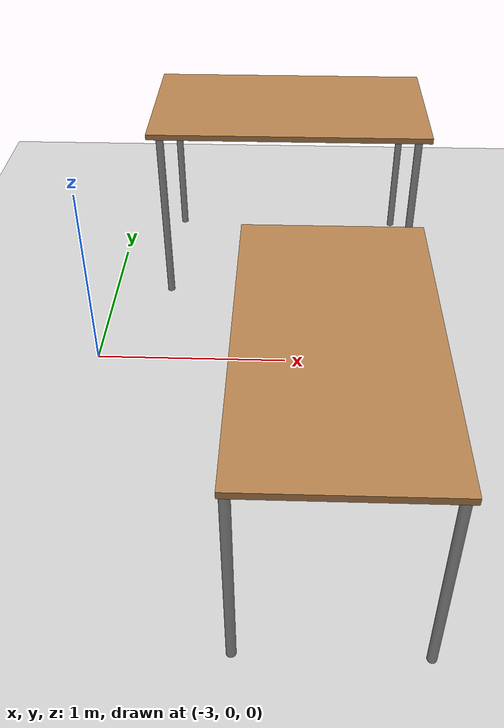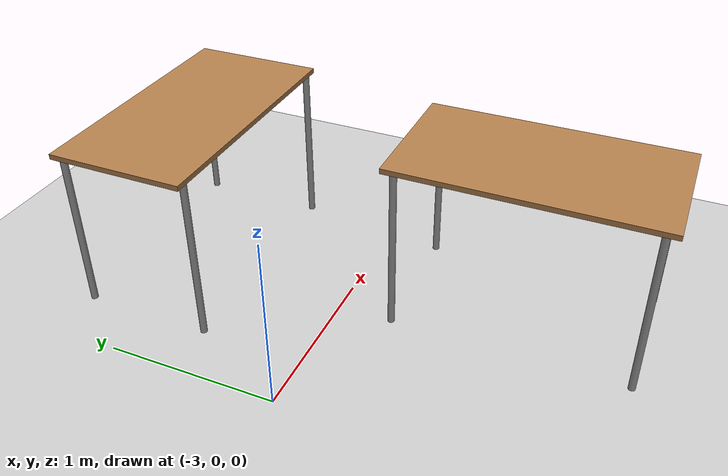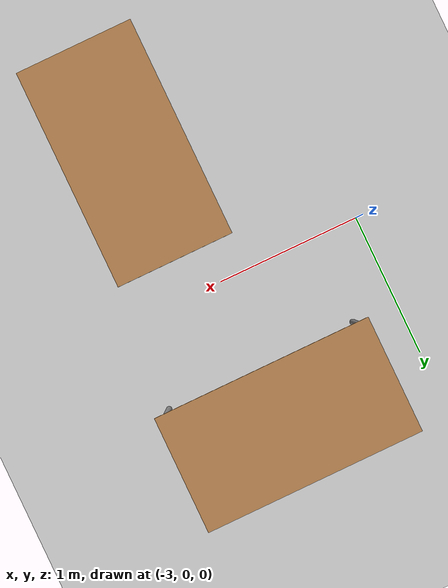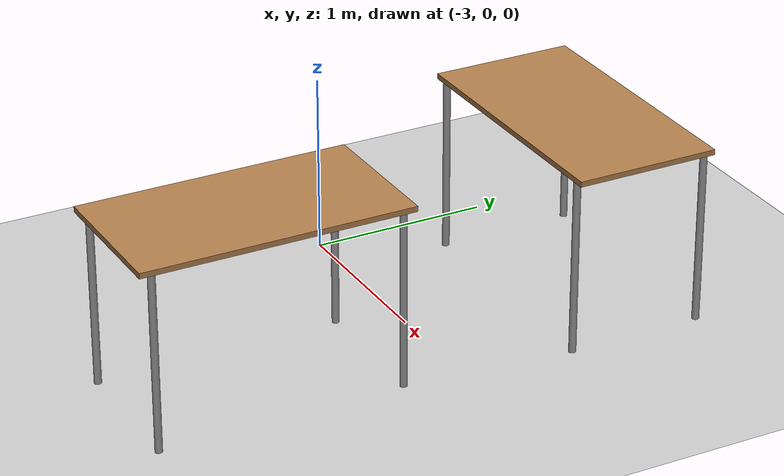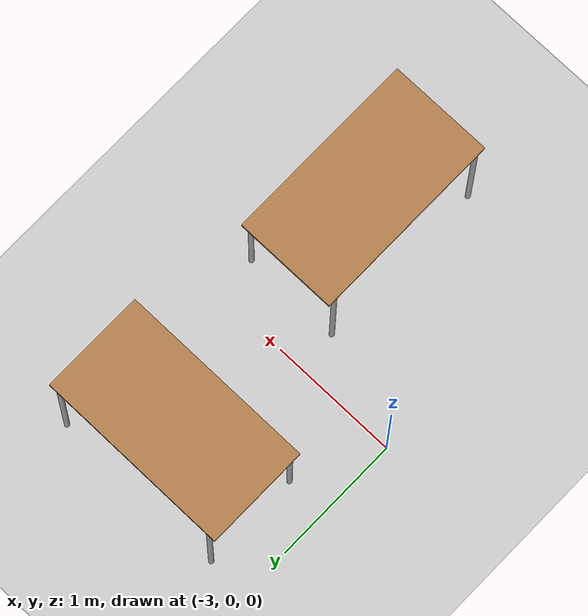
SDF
<gazebo version="1.2">
 <world name="default">
  <physics type="ode">
   <gravity>0 0 -9.81</gravity>
   <update_rate>1000</update_rate>
   <ode>
    <solver><type>quick</type><dt>0.001</dt><iters>40</iters><sor>1.0</sor></solver>
    <constraints>
     <cfm>0.0</cfm>
     <erp>0.2</erp>
     <contact_max_correcting_vel>100.0</contact_max_correcting_vel>
     <contact_surface_layer>0.0</contact_surface_layer>
    </constraints>
   </ode>
  </physics>
  <include><uri>model://sun</uri></include>
  <include><uri>model://ground_plane</uri></include>
  <include><name>table1</name><uri>model://mit_table</uri><pose>-2 1 0 0 0 0</pose></include>
  <include><name>table2</name><uri>model://mit_table</uri><pose>-1.80 -1 0 0 0 -1.57</pose></include>
 </world>
</gazebo>

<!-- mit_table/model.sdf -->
<sdf version="1.4">
    <model name="mit_table">
        <static>true</static>
        <link name="link">
            <collision name="surface">
                <pose>0 0 1.0 0 0 0</pose>
                <geometry>
                    <box>
                        <size>1.5 0.8 0.03</size>
                    </box>
                </geometry>
            </collision>
            <visual name="visual1">
                <pose>0 0 1.0 0 0 0</pose>
                <geometry>
                    <box>
                        <size>1.5 0.8 0.03</size>
                    </box>
                </geometry>
                <material>
                    <script>
                        <uri>file://media/materials/scripts/gazebo.material</uri>
                        <name>Gazebo/Wood</name>
                    </script>
                </material>
            </visual>
            <collision name="front_left_leg">
                <pose>0.68 0.38 0.5 0 0 0</pose>
                <geometry>
                    <cylinder>
                        <radius>0.02</radius>
                        <length>1.0</length>
                    </cylinder>
                </geometry>
            </collision>
            <visual name="front_left_leg">
                <pose>0.68 0.38 0.5 0 0 0</pose>
                <geometry>
                    <cylinder>
                        <radius>0.02</radius>
                        <length>1.0</length>
                    </cylinder>
                </geometry>
                <material>
                    <script>
                        <uri>file://media/materials/scripts/gazebo.material</uri>
                        <name>Gazebo/Grey</name>
                    </script>
                </material>
            </visual>
            <collision name="front_right_leg">
                <pose>0.68 -0.38 0.5 0 0 0</pose>
                <geometry>
                    <cylinder>
                        <radius>0.02</radius>
                        <length>1.0</length>
                    </cylinder>
                </geometry>
            </collision>
            <visual name="front_right_leg">
                <pose>0.68 -0.38 0.5 0 0 0</pose>
                <geometry>
                    <cylinder>
                        <radius>0.02</radius>
                        <length>1.0</length>
                    </cylinder>
                </geometry>
                <material>
                    <script>
                        <uri>file://media/materials/scripts/gazebo.material</uri>
                        <name>Gazebo/Grey</name>
                    </script>
                </material>
            </visual>
            <collision name="back_right_leg">
                <pose>-0.68 -0.38 0.5 0 0 0</pose>
                <geometry>
                    <cylinder>
                        <radius>0.02</radius>
                        <length>1.0</length>
                    </cylinder>
                </geometry>
            </collision>
            <visual name="back_right_leg">
                <pose>-0.68 -0.38 0.5 0 0 0</pose>
                <geometry>
                    <cylinder>
                        <radius>0.02</radius>
                        <length>1.0</length>
                    </cylinder>
                </geometry>
                <material>
                    <script>
                        <uri>file://media/materials/scripts/gazebo.material</uri>
                        <name>Gazebo/Grey</name>
                    </script>
                </material>
            </visual>
            <collision name="back_left_leg">
                <pose>-0.68 0.38 0.5 0 0 0</pose>
                <geometry>
                    <cylinder>
                        <radius>0.02</radius>
                        <length>1.0</length>
                    </cylinder>
                </geometry>
            </collision>
            <visual name="back_left_leg">
                <pose>-0.68 0.38 0.5 0 0 0</pose>
                <geometry>
                    <cylinder>
                        <radius>0.02</radius>
                        <length>1.0</length>
                    </cylinder>
                </geometry>
                <material>
                    <script>
                        <uri>file://media/materials/scripts/gazebo.material</uri>
                        <name>Gazebo/Grey</name>
                    </script>
                </material>
            </visual>
        </link>
    </model>
</sdf>
